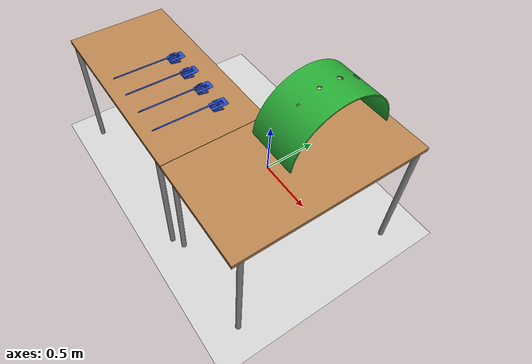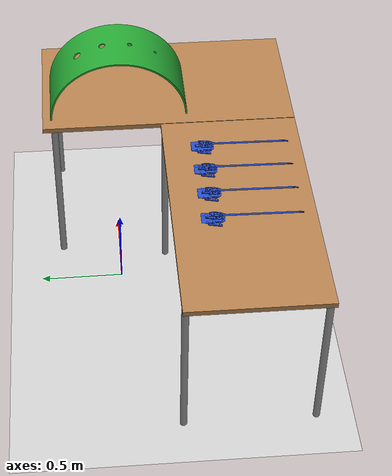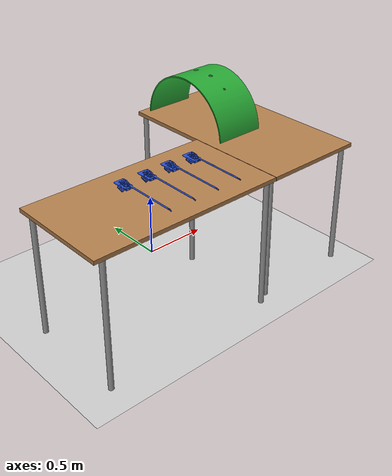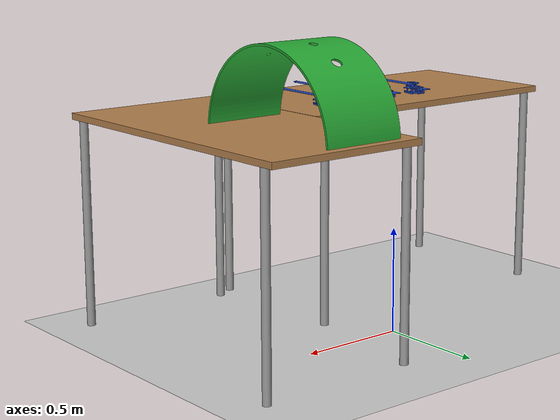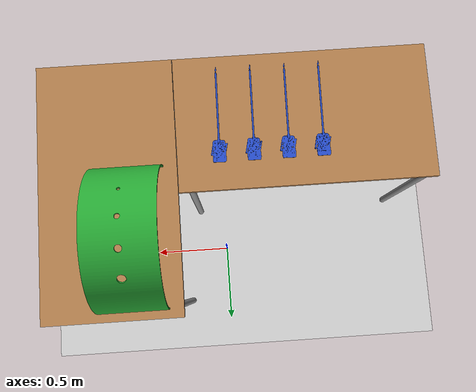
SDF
<sdf version='1.6'>
  <world name='default'>
    <light name='sun' type='directional'>
      <cast_shadows>1</cast_shadows>
      <pose frame=''>0 0 10 0 -0 0</pose>
      <diffuse>0.8 0.8 0.8 1</diffuse>
      <specular>0.2 0.2 0.2 1</specular>
      <attenuation>
        <range>1000</range>
        <constant>0.9</constant>
        <linear>0.01</linear>
        <quadratic>0.001</quadratic>
      </attenuation>
      <direction>-0.5 0.1 -0.9</direction>
    </light>
    <model name='ground_plane'>
      <static>1</static>
      <link name='link'>
        <collision name='collision'>
          <geometry>
            <plane>
              <normal>0 0 1</normal>
              <size>100 100</size>
            </plane>
          </geometry>
          <surface>
            <friction>
              <ode>
                <mu>100</mu>
                <mu2>50</mu2>
              </ode>
              <torsional>
                <ode/>
              </torsional>
            </friction>
            <contact>
              <ode/>
            </contact>
            <bounce/>
          </surface>
          <max_contacts>10</max_contacts>
        </collision>
        <visual name='visual'>
          <cast_shadows>0</cast_shadows>
          <geometry>
            <plane>
              <normal>0 0 1</normal>
              <size>100 100</size>
            </plane>
          </geometry>
          <material>
            <script>
              <uri>file://media/materials/scripts/gazebo.material</uri>
              <name>Gazebo/Grey</name>
            </script>
          </material>
        </visual>
        <self_collide>0</self_collide>
        <enable_wind>0</enable_wind>
        <kinematic>0</kinematic>
      </link>
    </model>
    <gravity>0 0 -9.8</gravity>
    <magnetic_field>6e-06 2.3e-05 -4.2e-05</magnetic_field>
    <atmosphere type='adiabatic'/>
    <physics name='default_physics' default='0' type='ode'>
      <max_step_size>0.001</max_step_size>
      <real_time_factor>1</real_time_factor>
      <real_time_update_rate>1000</real_time_update_rate>
    </physics>
    <scene>
      <ambient>0.4 0.4 0.4 1</ambient>
      <background>0.7 0.7 0.7 1</background>
      <shadows>0</shadows>
    </scene>
    <audio>
      <device>default</device>
    </audio>
    <wind/>
    <spherical_coordinates>
      <surface_model>EARTH_WGS84</surface_model>
      <latitude_deg>0</latitude_deg>
      <longitude_deg>0</longitude_deg>
      <elevation>0</elevation>
      <heading_deg>0</heading_deg>
    </spherical_coordinates>
    <model name='table1'>
      <static>1</static>
      <link name='link'>
        <collision name='surface'>
          <pose frame=''>0 0 1 0 -0 0</pose>
          <geometry>
            <box>
              <size>1.5 0.8 0.03</size>
            </box>
          </geometry>
          <surface>
            <friction>
              <ode>
                <mu>0.6</mu>
                <mu2>0.6</mu2>
              </ode>
              <torsional>
                <ode/>
              </torsional>
            </friction>
            <contact>
              <ode/>
            </contact>
            <bounce/>
          </surface>
          <max_contacts>10</max_contacts>
        </collision>
        <visual name='visual1'>
          <pose frame=''>0 0 1 0 -0 0</pose>
          <geometry>
            <box>
              <size>1.5 0.8 0.03</size>
            </box>
          </geometry>
          <material>
            <script>
              <uri>file://media/materials/scripts/gazebo.material</uri>
              <name>Gazebo/Wood</name>
            </script>
          </material>
        </visual>
        <collision name='front_left_leg'>
          <pose frame=''>0.68 0.38 0.5 0 -0 0</pose>
          <geometry>
            <cylinder>
              <radius>0.02</radius>
              <length>1</length>
            </cylinder>
          </geometry>
        </collision>
        <visual name='front_left_leg'>
          <pose frame=''>0.68 0.38 0.5 0 -0 0</pose>
          <geometry>
            <cylinder>
              <radius>0.02</radius>
              <length>1</length>
            </cylinder>
          </geometry>
          <material>
            <script>
              <uri>file://media/materials/scripts/gazebo.material</uri>
              <name>Gazebo/Grey</name>
            </script>
          </material>
        </visual>
        <collision name='front_right_leg'>
          <pose frame=''>0.68 -0.38 0.5 0 -0 0</pose>
          <geometry>
            <cylinder>
              <radius>0.02</radius>
              <length>1</length>
            </cylinder>
          </geometry>
        </collision>
        <visual name='front_right_leg'>
          <pose frame=''>0.68 -0.38 0.5 0 -0 0</pose>
          <geometry>
            <cylinder>
              <radius>0.02</radius>
              <length>1</length>
            </cylinder>
          </geometry>
          <material>
            <script>
              <uri>file://media/materials/scripts/gazebo.material</uri>
              <name>Gazebo/Grey</name>
            </script>
          </material>
        </visual>
        <collision name='back_right_leg'>
          <pose frame=''>-0.68 -0.38 0.5 0 -0 0</pose>
          <geometry>
            <cylinder>
              <radius>0.02</radius>
              <length>1</length>
            </cylinder>
          </geometry>
        </collision>
        <visual name='back_right_leg'>
          <pose frame=''>-0.68 -0.38 0.5 0 -0 0</pose>
          <geometry>
            <cylinder>
              <radius>0.02</radius>
              <length>1</length>
            </cylinder>
          </geometry>
          <material>
            <script>
              <uri>file://media/materials/scripts/gazebo.material</uri>
              <name>Gazebo/Grey</name>
            </script>
          </material>
        </visual>
        <collision name='back_left_leg'>
          <pose frame=''>-0.68 0.38 0.5 0 -0 0</pose>
          <geometry>
            <cylinder>
              <radius>0.02</radius>
              <length>1</length>
            </cylinder>
          </geometry>
        </collision>
        <visual name='back_left_leg'>
          <pose frame=''>-0.68 0.38 0.5 0 -0 0</pose>
          <geometry>
            <cylinder>
              <radius>0.02</radius>
              <length>1</length>
            </cylinder>
          </geometry>
          <material>
            <script>
              <uri>file://media/materials/scripts/gazebo.material</uri>
              <name>Gazebo/Grey</name>
            </script>
          </material>
        </visual>
        <self_collide>0</self_collide>
        <enable_wind>0</enable_wind>
        <kinematic>0</kinematic>
      </link>
      <pose frame=''>-0.503091 -0.66731 0 0 0 0</pose>
    </model>
    <model name='table2'>
      <static>1</static>
      <link name='link'>
        <collision name='surface'>
          <pose frame=''>0 0 1 0 -0 0</pose>
          <geometry>
            <box>
              <size>1.5 0.8 0.03</size>
            </box>
          </geometry>
          <surface>
            <friction>
              <ode>
                <mu>0.6</mu>
                <mu2>0.6</mu2>
              </ode>
              <torsional>
                <ode/>
              </torsional>
            </friction>
            <contact>
              <ode/>
            </contact>
            <bounce/>
          </surface>
          <max_contacts>10</max_contacts>
        </collision>
        <visual name='visual1'>
          <pose frame=''>0 0 1 0 -0 0</pose>
          <geometry>
            <box>
              <size>1.5 0.8 0.03</size>
            </box>
          </geometry>
          <material>
            <script>
              <uri>file://media/materials/scripts/gazebo.material</uri>
              <name>Gazebo/Wood</name>
            </script>
          </material>
        </visual>
        <collision name='front_left_leg'>
          <pose frame=''>0.68 0.38 0.5 0 -0 0</pose>
          <geometry>
            <cylinder>
              <radius>0.02</radius>
              <length>1</length>
            </cylinder>
          </geometry>
        </collision>
        <visual name='front_left_leg'>
          <pose frame=''>0.68 0.38 0.5 0 -0 0</pose>
          <geometry>
            <cylinder>
              <radius>0.02</radius>
              <length>1</length>
            </cylinder>
          </geometry>
          <material>
            <script>
              <uri>file://media/materials/scripts/gazebo.material</uri>
              <name>Gazebo/Grey</name>
            </script>
          </material>
        </visual>
        <collision name='front_right_leg'>
          <pose frame=''>0.68 -0.38 0.5 0 -0 0</pose>
          <geometry>
            <cylinder>
              <radius>0.02</radius>
              <length>1</length>
            </cylinder>
          </geometry>
        </collision>
        <visual name='front_right_leg'>
          <pose frame=''>0.68 -0.38 0.5 0 -0 0</pose>
          <geometry>
            <cylinder>
              <radius>0.02</radius>
              <length>1</length>
            </cylinder>
          </geometry>
          <material>
            <script>
              <uri>file://media/materials/scripts/gazebo.material</uri>
              <name>Gazebo/Grey</name>
            </script>
          </material>
        </visual>
        <collision name='back_right_leg'>
          <pose frame=''>-0.68 -0.38 0.5 0 -0 0</pose>
          <geometry>
            <cylinder>
              <radius>0.02</radius>
              <length>1</length>
            </cylinder>
          </geometry>
        </collision>
        <visual name='back_right_leg'>
          <pose frame=''>-0.68 -0.38 0.5 0 -0 0</pose>
          <geometry>
            <cylinder>
              <radius>0.02</radius>
              <length>1</length>
            </cylinder>
          </geometry>
          <material>
            <script>
              <uri>file://media/materials/scripts/gazebo.material</uri>
              <name>Gazebo/Grey</name>
            </script>
          </material>
        </visual>
        <collision name='back_left_leg'>
          <pose frame=''>-0.68 0.38 0.5 0 -0 0</pose>
          <geometry>
            <cylinder>
              <radius>0.02</radius>
              <length>1</length>
            </cylinder>
          </geometry>
        </collision>
        <visual name='back_left_leg'>
          <pose frame=''>-0.68 0.38 0.5 0 -0 0</pose>
          <geometry>
            <cylinder>
              <radius>0.02</radius>
              <length>1</length>
            </cylinder>
          </geometry>
          <material>
            <script>
              <uri>file://media/materials/scripts/gazebo.material</uri>
              <name>Gazebo/Grey</name>
            </script>
          </material>
        </visual>
        <self_collide>0</self_collide>
        <enable_wind>0</enable_wind>
        <kinematic>0</kinematic>
      </link>
      <pose frame=''>0.650416 -0.317753 0 0 0 1.5708</pose>
    </model>
    <gui fullscreen='0'>
      <camera name='user_camera'>
        <pose frame=''>0.675966 -4.02037 2.36311 0 0.275643 1.6274</pose>
        <view_controller>orbit</view_controller>
        <projection_type>perspective</projection_type>
      </camera>
    </gui>
    <model name='surgical_tool1'>
      <pose frame=''>-0.6 -0.53 1.03599 0 0 0</pose>
      <link name='surgical_tool_link'>
        <inertial>
          <mass>0.2</mass>
          <inertia>
            <ixx>0.00001</ixx>
            <ixy>0</ixy>
            <ixz>0</ixz>
            <iyy>0</iyy>
            <iyz>0</iyz>
            <izz>0.00001</izz>
          </inertia>
        </inertial>
        <collision name='collision'>
          <geometry>
            <mesh>
              <uri>model://kuka_barrett_gazebo/objects/surgical_tool/meshes/surgical_tool.stl</uri>
            </mesh>
          </geometry>
          <max_contacts>30</max_contacts>
          <surface>
            <contact>
              <ode/>
            </contact>
            <bounce/>
            <friction>
              <torsional>
                <ode/>
              </torsional>
              <ode/>
            </friction>
          </surface>
        </collision>
        <visual name='visual'>
          <geometry>
            <mesh>
              <uri>model://kuka_barrett_gazebo/objects/surgical_tool/meshes/surgical_tool.stl</uri>
            </mesh>
          </geometry>
          <material>
            <script>
              <name>Gazebo/Blue</name>
              <uri>file://media/materials/scripts/gazebo.material</uri>
            </script>
          </material>
        </visual>
        <self_collide>0</self_collide>
        <enable_wind>0</enable_wind>
        <kinematic>0</kinematic>
      </link>
    </model>
    <model name='surgical_tool2'>
      <pose frame=''>-0.4 -0.53 1.03599 0 0 0</pose>
      <link name='surgical_tool_link'>
        <inertial>
          <mass>0.2</mass>
          <inertia>
            <ixx>0.00001</ixx>
            <ixy>0</ixy>
            <ixz>0</ixz>
            <iyy>0</iyy>
            <iyz>0</iyz>
            <izz>0.00001</izz>
          </inertia>
        </inertial>
        <collision name='collision'>
          <geometry>
            <mesh>
              <uri>model://kuka_barrett_gazebo/objects/surgical_tool/meshes/surgical_tool.stl</uri>
            </mesh>
          </geometry>
          <max_contacts>30</max_contacts>
          <surface>
            <contact>
              <ode/>
            </contact>
            <bounce/>
            <friction>
              <torsional>
                <ode/>
              </torsional>
              <ode/>
            </friction>
          </surface>
        </collision>
        <visual name='visual'>
          <geometry>
            <mesh>
              <uri>model://kuka_barrett_gazebo/objects/surgical_tool/meshes/surgical_tool.stl</uri>
            </mesh>
          </geometry>
          <material>
            <script>
              <name>Gazebo/Blue</name>
              <uri>file://media/materials/scripts/gazebo.material</uri>
            </script>
          </material>
        </visual>
        <self_collide>0</self_collide>
        <enable_wind>0</enable_wind>
        <kinematic>0</kinematic>
      </link>
    </model>
    <model name='surgical_tool3'>
      <pose frame=''>-0.2 -0.53 1.03599 0 0 0</pose>
      <link name='surgical_tool_link'>
        <inertial>
          <mass>0.2</mass>
          <inertia>
            <ixx>0.00001</ixx>
            <ixy>0</ixy>
            <ixz>0</ixz>
            <iyy>0</iyy>
            <iyz>0</iyz>
            <izz>0.00001</izz>
          </inertia>
        </inertial>
        <collision name='collision'>
          <geometry>
            <mesh>
              <uri>model://kuka_barrett_gazebo/objects/surgical_tool/meshes/surgical_tool.stl</uri>
            </mesh>
          </geometry>
          <max_contacts>30</max_contacts>
          <surface>
            <contact>
              <ode/>
            </contact>
            <bounce/>
            <friction>
              <torsional>
                <ode/>
              </torsional>
              <ode/>
            </friction>
          </surface>
        </collision>
        <visual name='visual'>
          <geometry>
            <mesh>
              <uri>model://kuka_barrett_gazebo/objects/surgical_tool/meshes/surgical_tool.stl</uri>
            </mesh>
          </geometry>
          <material>
            <script>
              <name>Gazebo/Blue</name>
              <uri>file://media/materials/scripts/gazebo.material</uri>
            </script>
          </material>
        </visual>
        <self_collide>0</self_collide>
        <enable_wind>0</enable_wind>
        <kinematic>0</kinematic>
      </link>
    </model>
    <model name='surgical_tool4'>
      <pose frame=''>0 -0.53 1.03599 0 0 0</pose>
      <link name='surgical_tool_link'>
        <inertial>
          <mass>0.2</mass>
          <inertia>
            <ixx>0.00001</ixx>
            <ixy>0</ixy>
            <ixz>0</ixz>
            <iyy>0</iyy>
            <iyz>0</iyz>
            <izz>0.00001</izz>
          </inertia>
        </inertial>
        <collision name='collision'>
          <geometry>
            <mesh>
              <uri>model://kuka_barrett_gazebo/objects/surgical_tool/meshes/surgical_tool.stl</uri>
            </mesh>
          </geometry>
          <max_contacts>30</max_contacts>
          <surface>
            <contact>
              <ode/>
            </contact>
            <bounce/>
            <friction>
              <torsional>
                <ode/>
              </torsional>
              <ode/>
            </friction>
          </surface>
        </collision>
        <visual name='visual'>
          <geometry>
            <mesh>
              <uri>model://kuka_barrett_gazebo/objects/surgical_tool/meshes/surgical_tool.stl</uri>
            </mesh>
          </geometry>
          <material>
            <script>
              <name>Gazebo/Blue</name>
              <uri>file://media/materials/scripts/gazebo.material</uri>
            </script>
          </material>
        </visual>
        <self_collide>0</self_collide>
        <enable_wind>0</enable_wind>
        <kinematic>0</kinematic>
      </link>
    </model>
    <model name='mounting_dock'>
      <pose frame=''>0.53 -0.025 1.25094 0 0 -1.57079633</pose>
      <link name='mounting_dock_link'>
        <inertial>
          <mass>1</mass>
          <inertia>
            <ixx>0.003272</ixx>
            <ixy>0</ixy>
            <ixz>0</ixz>
            <iyy>0.001119</iyy>
            <iyz>0</iyz>
            <izz>0.003325</izz>
          </inertia>
        </inertial>
        <collision name='collision'>
          <geometry>
            <mesh>
              <uri>model://kuka_barrett_gazebo/objects/mounting_dock/meshes/mounting_dock.stl</uri>
            </mesh>
          </geometry>
        </collision>
        <visual name='visual'>
          <geometry>
            <mesh>
              <uri>model://kuka_barrett_gazebo/objects/mounting_dock/meshes/mounting_dock.stl</uri>
            </mesh>
          </geometry>
          <material>
            <script>
              <name>Gazebo/Green</name>
              <uri>file://media/materials/scripts/gazebo.material</uri>
            </script>
          </material>
        </visual>
        <self_collide>0</self_collide>
        <enable_wind>0</enable_wind>
        <kinematic>0</kinematic>
      </link>
      <static>true</static>
    </model>
  </world>
</sdf>
